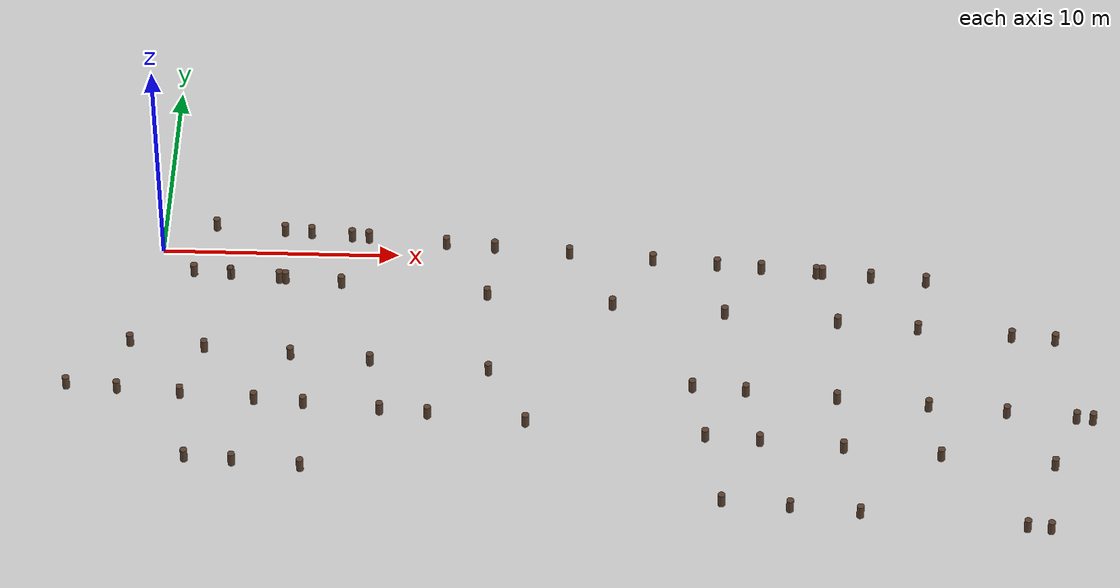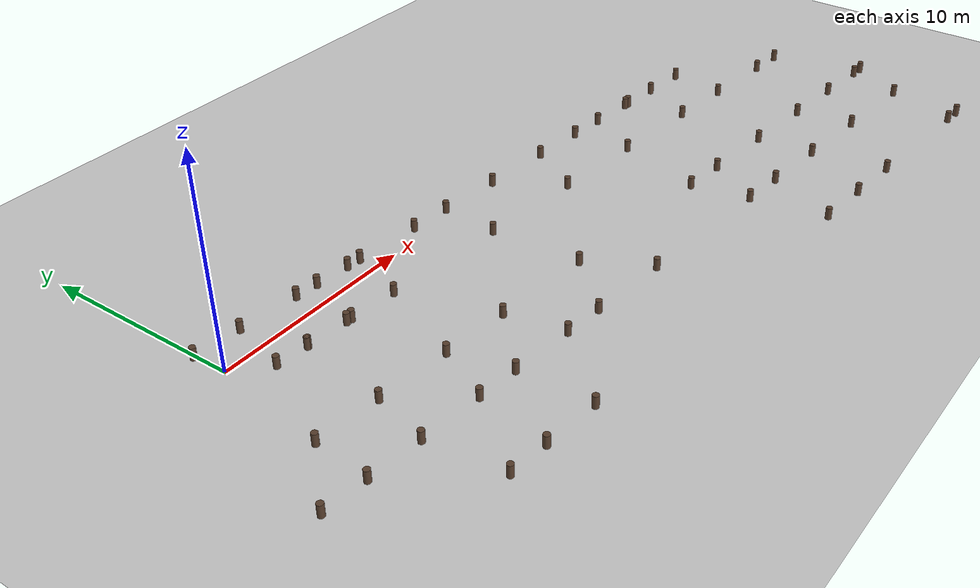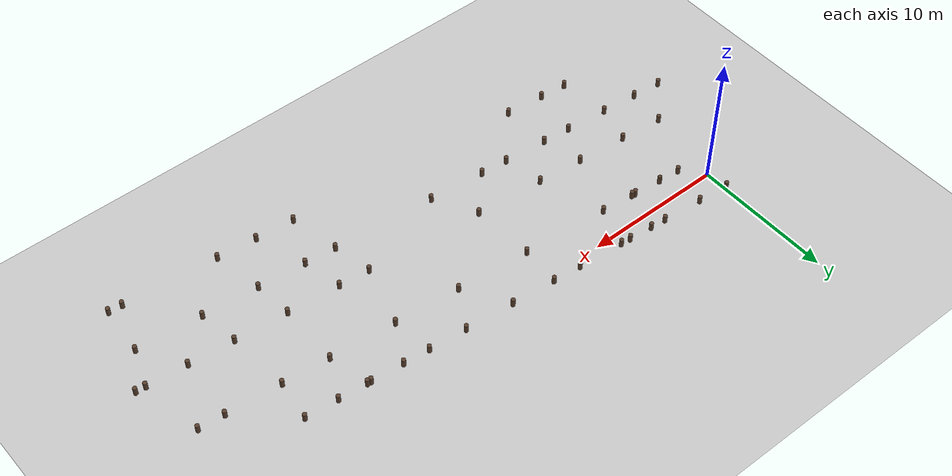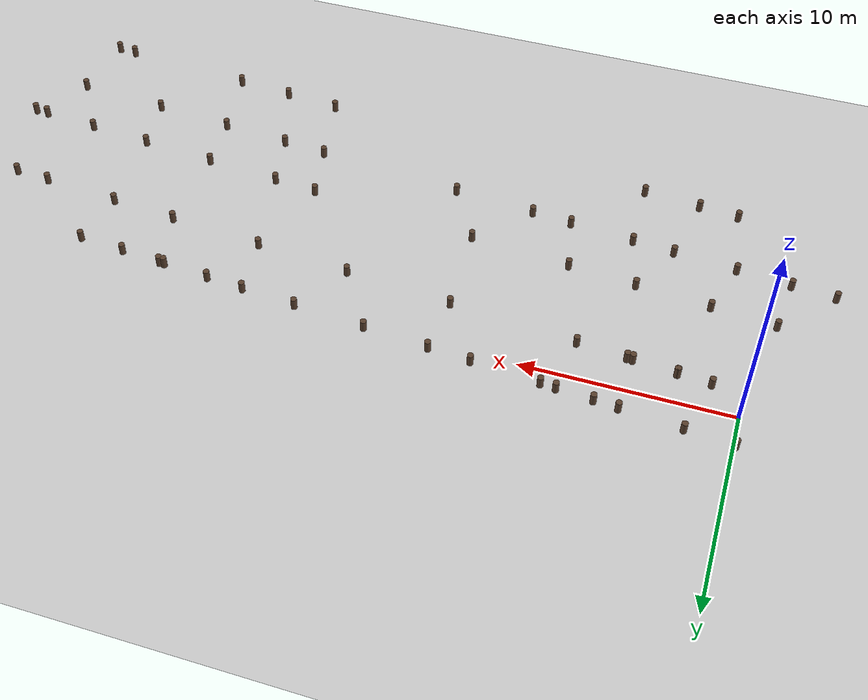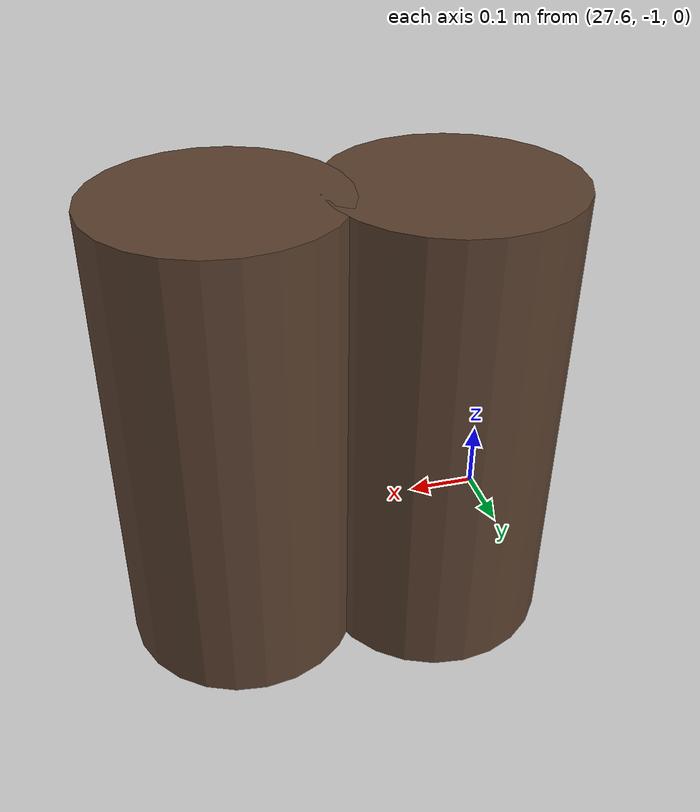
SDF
<?xml version="1.0"?>
<sdf version="1.6">
  <world name="orchard_world">
    <include>
      <uri>model://sun</uri>
    </include>

    <include>
      <uri>model://ground_plane</uri>
    </include>

    <!-- Trees: 62 includes of model://tree_trunk -->
    <include>
      <uri>model://tree_trunk</uri>
      <name>tree_0000</name>
      <pose>37.172100 -15.472221 0 0 0 0</pose>
    </include>
    <include>
      <uri>model://tree_trunk</uri>
      <name>tree_0001</name>
      <pose>36.220551 -15.389243 0 0 0 0</pose>
    </include>
    <include>
      <uri>model://tree_trunk</uri>
      <name>tree_0002</name>
      <pose>29.481499 -14.801580 0 0 0 0</pose>
    </include>
    <include>
      <uri>model://tree_trunk</uri>
      <name>tree_0003</name>
      <pose>26.635933 -14.553439 0 0 0 0</pose>
    </include>
    <include>
      <uri>model://tree_trunk</uri>
      <name>tree_0004</name>
      <pose>23.857040 -14.311112 0 0 0 0</pose>
    </include>
    <include>
      <uri>model://tree_trunk</uri>
      <name>tree_0005</name>
      <pose>6.649088 -12.810534 0 0 0 0</pose>
    </include>
    <include>
      <uri>model://tree_trunk</uri>
      <name>tree_0006</name>
      <pose>3.834252 -12.565073 0 0 0 0</pose>
    </include>
    <include>
      <uri>model://tree_trunk</uri>
      <name>tree_0007</name>
      <pose>1.873171 -12.394061 0 0 0 0</pose>
    </include>
    <include>
      <uri>model://tree_trunk</uri>
      <name>tree_0008</name>
      <pose>37.457512 -11.883434 0 0 0 0</pose>
    </include>
    <include>
      <uri>model://tree_trunk</uri>
      <name>tree_0009</name>
      <pose>32.815319 -11.478622 0 0 0 0</pose>
    </include>
    <include>
      <uri>model://tree_trunk</uri>
      <name>tree_0010</name>
      <pose>28.834242 -11.131462 0 0 0 0</pose>
    </include>
    <include>
      <uri>model://tree_trunk</uri>
      <name>tree_0011</name>
      <pose>25.402876 -10.832237 0 0 0 0</pose>
    </include>
    <include>
      <uri>model://tree_trunk</uri>
      <name>tree_0012</name>
      <pose>23.156752 -10.636370 0 0 0 0</pose>
    </include>
    <include>
      <uri>model://tree_trunk</uri>
      <name>tree_0013</name>
      <pose>15.756805 -9.991075 0 0 0 0</pose>
    </include>
    <include>
      <uri>model://tree_trunk</uri>
      <name>tree_0014</name>
      <pose>11.698026 -9.637138 0 0 0 0</pose>
    </include>
    <include>
      <uri>model://tree_trunk</uri>
      <name>tree_0015</name>
      <pose>9.708392 -9.463637 0 0 0 0</pose>
    </include>
    <include>
      <uri>model://tree_trunk</uri>
      <name>tree_0016</name>
      <pose>39.099598 -9.215992 0 0 0 0</pose>
    </include>
    <include>
      <uri>model://tree_trunk</uri>
      <name>tree_0017</name>
      <pose>6.539353 -9.187288 0 0 0 0</pose>
    </include>
    <include>
      <uri>model://tree_trunk</uri>
      <name>tree_0018</name>
      <pose>38.423000 -9.156990 0 0 0 0</pose>
    </include>
    <include>
      <uri>model://tree_trunk</uri>
      <name>tree_0019</name>
      <pose>4.489985 -9.008578 0 0 0 0</pose>
    </include>
    <include>
      <uri>model://tree_trunk</uri>
      <name>tree_0020</name>
      <pose>35.564636 -8.907734 0 0 0 0</pose>
    </include>
    <include>
      <uri>model://tree_trunk</uri>
      <name>tree_0021</name>
      <pose>1.409469 -8.739949 0 0 0 0</pose>
    </include>
    <include>
      <uri>model://tree_trunk</uri>
      <name>tree_0022</name>
      <pose>32.350929 -8.627490 0 0 0 0</pose>
    </include>
    <include>
      <uri>model://tree_trunk</uri>
      <name>tree_0023</name>
      <pose>-1.223099 -8.510383 0 0 0 0</pose>
    </include>
    <include>
      <uri>model://tree_trunk</uri>
      <name>tree_0024</name>
      <pose>-3.343805 -8.325451 0 0 0 0</pose>
    </include>
    <include>
      <uri>model://tree_trunk</uri>
      <name>tree_0025</name>
      <pose>28.575968 -8.298304 0 0 0 0</pose>
    </include>
    <include>
      <uri>model://tree_trunk</uri>
      <name>tree_0026</name>
      <pose>24.810598 -7.969953 0 0 0 0</pose>
    </include>
    <include>
      <uri>model://tree_trunk</uri>
      <name>tree_0027</name>
      <pose>22.593590 -7.776624 0 0 0 0</pose>
    </include>
    <include>
      <uri>model://tree_trunk</uri>
      <name>tree_0028</name>
      <pose>14.111925 -7.037001 0 0 0 0</pose>
    </include>
    <include>
      <uri>model://tree_trunk</uri>
      <name>tree_0029</name>
      <pose>9.158360 -6.605036 0 0 0 0</pose>
    </include>
    <include>
      <uri>model://tree_trunk</uri>
      <name>tree_0030</name>
      <pose>5.827429 -6.314570 0 0 0 0</pose>
    </include>
    <include>
      <uri>model://tree_trunk</uri>
      <name>tree_0031</name>
      <pose>2.202753 -5.998489 0 0 0 0</pose>
    </include>
    <include>
      <uri>model://tree_trunk</uri>
      <name>tree_0032</name>
      <pose>-0.915404 -5.726578 0 0 0 0</pose>
    </include>
    <include>
      <uri>model://tree_trunk</uri>
      <name>tree_0033</name>
      <pose>37.705791 -4.577353 0 0 0 0</pose>
    </include>
    <include>
      <uri>model://tree_trunk</uri>
      <name>tree_0034</name>
      <pose>35.892307 -4.419213 0 0 0 0</pose>
    </include>
    <include>
      <uri>model://tree_trunk</uri>
      <name>tree_0035</name>
      <pose>31.983263 -4.078334 0 0 0 0</pose>
    </include>
    <include>
      <uri>model://tree_trunk</uri>
      <name>tree_0036</name>
      <pose>28.630886 -3.785997 0 0 0 0</pose>
    </include>
    <include>
      <uri>model://tree_trunk</uri>
      <name>tree_0037</name>
      <pose>23.891771 -3.372734 0 0 0 0</pose>
    </include>
    <include>
      <uri>model://tree_trunk</uri>
      <name>tree_0038</name>
      <pose>19.165960 -2.960631 0 0 0 0</pose>
    </include>
    <include>
      <uri>model://tree_trunk</uri>
      <name>tree_0039</name>
      <pose>13.880038 -2.499685 0 0 0 0</pose>
    </include>
    <include>
      <uri>model://tree_trunk</uri>
      <name>tree_0040</name>
      <pose>7.693704 -1.960220 0 0 0 0</pose>
    </include>
    <include>
      <uri>model://tree_trunk</uri>
      <name>tree_0041</name>
      <pose>5.319232 -1.753160 0 0 0 0</pose>
    </include>
    <include>
      <uri>model://tree_trunk</uri>
      <name>tree_0042</name>
      <pose>5.057426 -1.730330 0 0 0 0</pose>
    </include>
    <include>
      <uri>model://tree_trunk</uri>
      <name>tree_0043</name>
      <pose>2.994790 -1.550462 0 0 0 0</pose>
    </include>
    <include>
      <uri>model://tree_trunk</uri>
      <name>tree_0044</name>
      <pose>2.977433 -1.548949 0 0 0 0</pose>
    </include>
    <include>
      <uri>model://tree_trunk</uri>
      <name>tree_0045</name>
      <pose>1.416185 -1.412804 0 0 0 0</pose>
    </include>
    <include>
      <uri>model://tree_trunk</uri>
      <name>tree_0046</name>
      <pose>32.369064 -1.200960 0 0 0 0</pose>
    </include>
    <include>
      <uri>model://tree_trunk</uri>
      <name>tree_0047</name>
      <pose>30.044434 -0.998246 0 0 0 0</pose>
    </include>
    <include>
      <uri>model://tree_trunk</uri>
      <name>tree_0048</name>
      <pose>28.002478 -0.820182 0 0 0 0</pose>
    </include>
    <include>
      <uri>model://tree_trunk</uri>
      <name>tree_0049</name>
      <pose>27.745329 -0.797758 0 0 0 0</pose>
    </include>
    <include>
      <uri>model://tree_trunk</uri>
      <name>tree_0050</name>
      <pose>25.414490 -0.594503 0 0 0 0</pose>
    </include>
    <include>
      <uri>model://tree_trunk</uri>
      <name>tree_0051</name>
      <pose>23.542929 -0.431298 0 0 0 0</pose>
    </include>
    <include>
      <uri>model://tree_trunk</uri>
      <name>tree_0052</name>
      <pose>20.816250 -0.193524 0 0 0 0</pose>
    </include>
    <include>
      <uri>model://tree_trunk</uri>
      <name>tree_0053</name>
      <pose>17.275930 0.115201 0 0 0 0</pose>
    </include>
    <include>
      <uri>model://tree_trunk</uri>
      <name>tree_0054</name>
      <pose>14.085224 0.393439 0 0 0 0</pose>
    </include>
    <include>
      <uri>model://tree_trunk</uri>
      <name>tree_0055</name>
      <pose>12.023187 0.573254 0 0 0 0</pose>
    </include>
    <include>
      <uri>model://tree_trunk</uri>
      <name>tree_0056</name>
      <pose>8.704967 0.862612 0 0 0 0</pose>
    </include>
    <include>
      <uri>model://tree_trunk</uri>
      <name>tree_0057</name>
      <pose>7.981194 0.925727 0 0 0 0</pose>
    </include>
    <include>
      <uri>model://tree_trunk</uri>
      <name>tree_0058</name>
      <pose>6.248720 1.076803 0 0 0 0</pose>
    </include>
    <include>
      <uri>model://tree_trunk</uri>
      <name>tree_0059</name>
      <pose>5.111092 1.176007 0 0 0 0</pose>
    </include>
    <include>
      <uri>model://tree_trunk</uri>
      <name>tree_0060</name>
      <pose>2.175257 1.432020 0 0 0 0</pose>
    </include>
    <include>
      <uri>model://tree_trunk</uri>
      <name>tree_0061</name>
      <pose>-0.106357 1.630983 0 0 0 0</pose>
    </include>
  </world>
</sdf>

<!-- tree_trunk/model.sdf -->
<sdf version="1.6">
  <model name="tree_trunk">
    <static>true</static>
    <link name="link">
      <collision name="trunk_collision">
        <pose>0 0 0.30 0 0 0</pose>
        <geometry>
          <cylinder>
            <radius>0.15</radius>
            <length>0.60</length>
          </cylinder>
        </geometry>
      </collision>
      <visual name="trunk_visual">
        <pose>0 0 0.30 0 0 0</pose>
        <geometry>
          <cylinder>
            <radius>0.15</radius>
            <length>0.60</length>
          </cylinder>
        </geometry>
        <material>
          <ambient>0.25 0.18 0.12 1</ambient>
          <diffuse>0.35 0.25 0.18 1</diffuse>
        </material>
      </visual>
    </link>
  </model>
</sdf>
